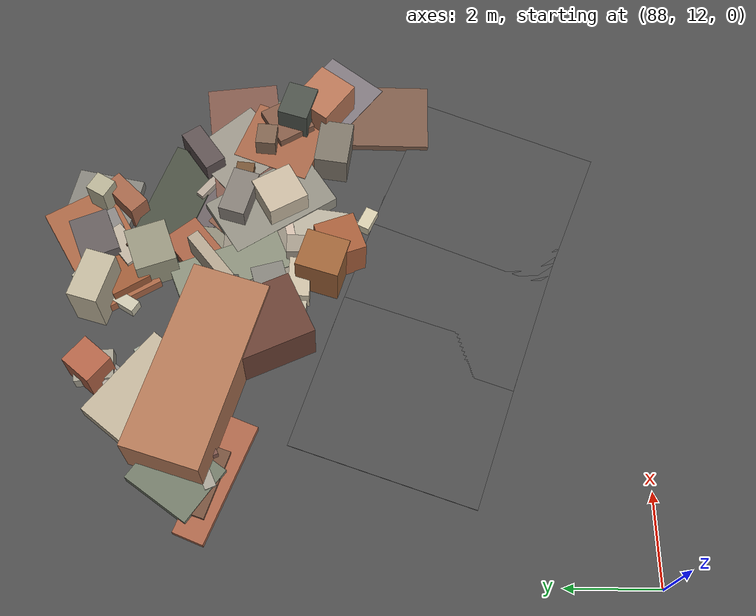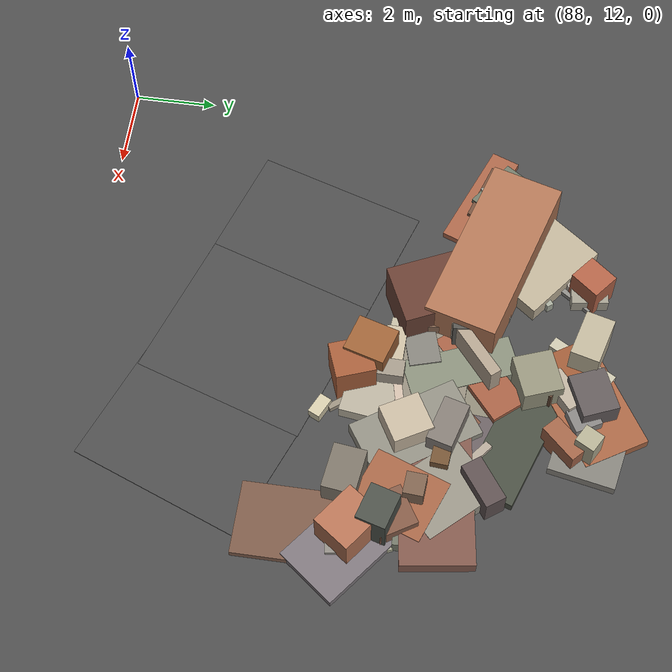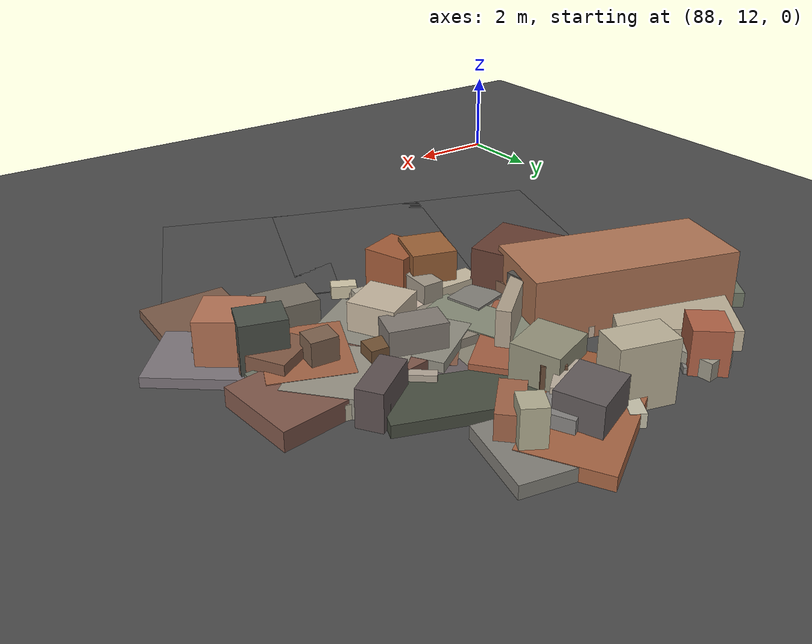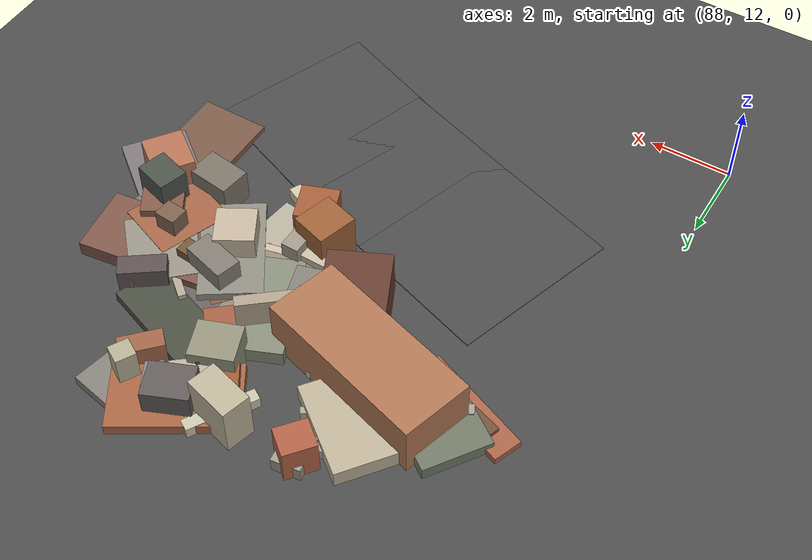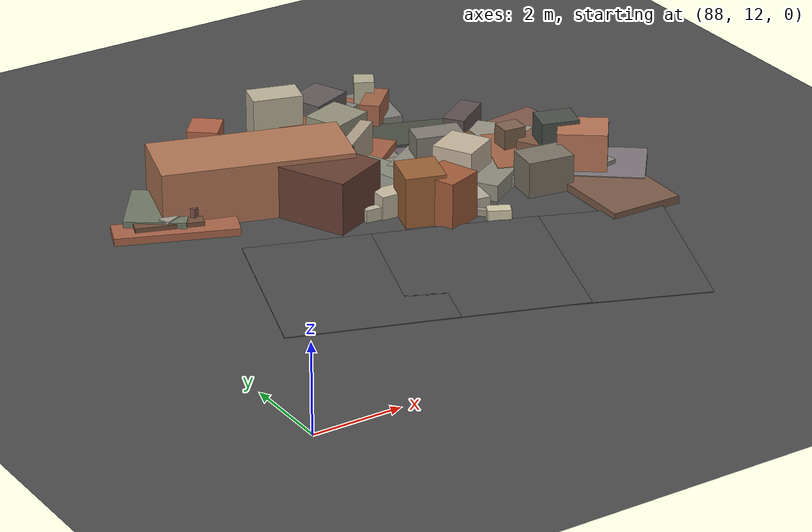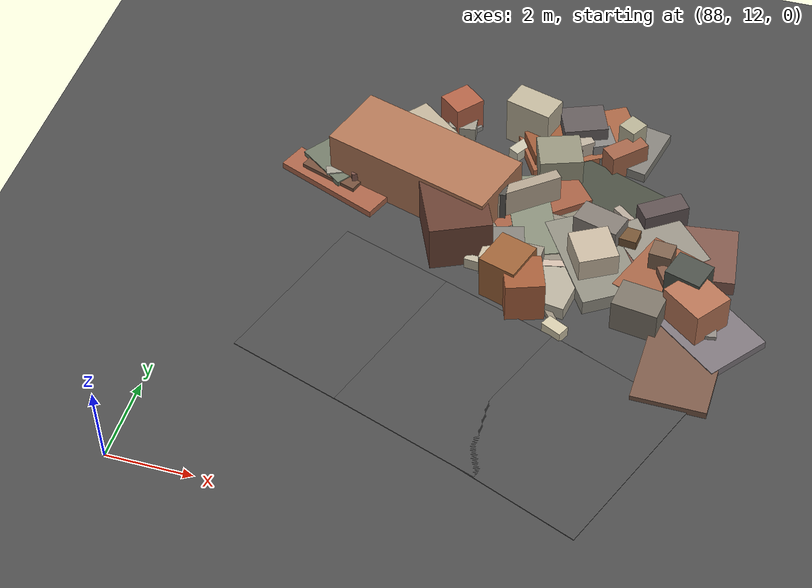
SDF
<sdf version="1.6">
 <world name="navitas_arena">
  <model name="ground_plane">
   <static>true</static>
   <link name="link">
    <collision name="collision">
     <geometry><plane><normal>0 0 1</normal><size>400 400</size></plane></geometry>
     <surface><friction><ode><mu>0.800</mu><mu2>0.800</mu2></ode></friction></surface>
    </collision>
    <visual name="visual">
     <cast_shadows>false</cast_shadows>
     <geometry><plane><normal>0 0 1</normal><size>400 400</size></plane></geometry>
     <material>
      <specular>0.04 0.04 0.04 1</specular>
      <script>
       <uri>file://media/materials/scripts/navitas_asphalt.material</uri>
       <name>Navitas/RealArenaAsphalt</name>
      </script>
     </material>
    </visual>
   </link>
  </model>
  <model name="road_zor_3_21">
   <static>true</static>
   <pose>97.162 15.214 0.040 0 0 2.764</pose>
   <link name="link">
    <collision name="col"><geometry><box><size>3.565 4.200 0.020</size></box></geometry></collision>
    <visual name="vis">
     <geometry><box><size>3.565 4.200 0.020</size></box></geometry>
     <material>
      <specular>0.04 0.04 0.04 1</specular>
      <script>
       <uri>file://media/materials/scripts/navitas_asphalt.material</uri>
       <name>Navitas/RealArenaAsphalt</name>
      </script>
     </material>
    </visual>
   </link>
  </model>
  <model name="road_zor_3_22">
   <static>true</static>
   <pose>94.605 16.160 0.040 0 0 2.809</pose>
   <link name="link">
    <collision name="col"><geometry><box><size>3.688 4.200 0.020</size></box></geometry></collision>
    <visual name="vis">
     <geometry><box><size>3.688 4.200 0.020</size></box></geometry>
     <material>
      <specular>0.04 0.04 0.04 1</specular>
      <script>
       <uri>file://media/materials/scripts/navitas_asphalt.material</uri>
       <name>Navitas/RealArenaAsphalt</name>
      </script>
     </material>
    </visual>
   </link>
  </model>
  <model name="road_zor_3_23">
   <static>true</static>
   <pose>91.965 17.058 0.040 0 0 2.819</pose>
   <link name="link">
    <collision name="col"><geometry><box><size>3.690 4.200 0.020</size></box></geometry></collision>
    <visual name="vis">
     <geometry><box><size>3.690 4.200 0.020</size></box></geometry>
     <material>
      <specular>0.04 0.04 0.04 1</specular>
      <script>
       <uri>file://media/materials/scripts/navitas_asphalt.material</uri>
       <name>Navitas/RealArenaAsphalt</name>
      </script>
     </material>
    </visual>
   </link>
  </model>
  <model name="deb_zor_7">
   <static>true</static>
   <pose>94.740 20.028 0.000 0 0 0</pose>
   <link name="link">
    <collision name="col_0">
     <pose>0.839 0.735 0.091 0.000 0.000 0.851</pose>
     <geometry><box><size>2.139 0.205 0.181</size></box></geometry>
    </collision>
    <visual name="vis_0">
     <pose>0.839 0.735 0.091 0.000 0.000 0.851</pose>
     <geometry><box><size>2.139 0.205 0.181</size></box></geometry>
     <material>
      <ambient>0.49 0.33 0.26 1</ambient>
      <diffuse>0.53 0.36 0.28 1</diffuse>
      <specular>0.05 0.05 0.045 1</specular>
     </material>
    </visual>
    <collision name="col_1">
     <pose>0.266 0.442 0.177 0.000 0.000 -0.054</pose>
     <geometry><box><size>2.109 1.569 0.355</size></box></geometry>
    </collision>
    <visual name="vis_1">
     <pose>0.266 0.442 0.177 0.000 0.000 -0.054</pose>
     <geometry><box><size>2.109 1.569 0.355</size></box></geometry>
     <material>
      <ambient>0.53 0.51 0.46 1</ambient>
      <diffuse>0.58 0.55 0.49 1</diffuse>
      <specular>0.05 0.05 0.045 1</specular>
     </material>
    </visual>
    <collision name="col_2">
     <pose>0.906 -0.437 0.101 0.000 0.000 1.153</pose>
     <geometry><box><size>0.268 0.257 0.201</size></box></geometry>
    </collision>
    <visual name="vis_2">
     <pose>0.906 -0.437 0.101 0.000 0.000 1.153</pose>
     <geometry><box><size>0.268 0.257 0.201</size></box></geometry>
     <material>
      <ambient>0.37 0.40 0.36 1</ambient>
      <diffuse>0.40 0.43 0.39 1</diffuse>
      <specular>0.05 0.05 0.045 1</specular>
     </material>
    </visual>
    <collision name="col_3">
     <pose>0.944 -0.075 0.113 0.000 0.000 0.996</pose>
     <geometry><box><size>0.306 0.165 0.226</size></box></geometry>
    </collision>
    <visual name="vis_3">
     <pose>0.944 -0.075 0.113 0.000 0.000 0.996</pose>
     <geometry><box><size>0.306 0.165 0.226</size></box></geometry>
     <material>
      <ambient>0.37 0.33 0.30 1</ambient>
      <diffuse>0.40 0.36 0.32 1</diffuse>
      <specular>0.05 0.05 0.045 1</specular>
     </material>
    </visual>
    <collision name="col_4">
     <pose>0.280 -0.813 0.128 0.000 0.000 0.427</pose>
     <geometry><box><size>0.356 0.166 0.256</size></box></geometry>
    </collision>
    <visual name="vis_4">
     <pose>0.280 -0.813 0.128 0.000 0.000 0.427</pose>
     <geometry><box><size>0.356 0.166 0.256</size></box></geometry>
     <material>
      <ambient>0.71 0.68 0.61 1</ambient>
      <diffuse>0.77 0.74 0.66 1</diffuse>
      <specular>0.05 0.05 0.045 1</specular>
     </material>
    </visual>
    <collision name="col_5">
     <pose>-0.104 -0.556 0.270 0.000 0.000 -0.026</pose>
     <geometry><box><size>0.950 0.480 0.541</size></box></geometry>
    </collision>
    <visual name="vis_5">
     <pose>-0.104 -0.556 0.270 0.000 0.000 -0.026</pose>
     <geometry><box><size>0.950 0.480 0.541</size></box></geometry>
     <material>
      <ambient>0.73 0.68 0.60 1</ambient>
      <diffuse>0.79 0.74 0.64 1</diffuse>
      <specular>0.05 0.05 0.045 1</specular>
     </material>
    </visual>
   </link>
  </model>
  <model name="deb_zor_18">
   <static>true</static>
   <pose>96.747 20.864 0.000 0 0 0</pose>
   <link name="link">
    <collision name="col_0">
     <pose>-0.134 0.033 0.444 0.000 0.000 2.860</pose>
     <geometry><box><size>1.107 0.608 0.889</size></box></geometry>
    </collision>
    <visual name="vis_0">
     <pose>-0.134 0.033 0.444 0.000 0.000 2.860</pose>
     <geometry><box><size>1.107 0.608 0.889</size></box></geometry>
     <material>
      <ambient>0.48 0.45 0.42 1</ambient>
      <diffuse>0.52 0.49 0.46 1</diffuse>
      <specular>0.05 0.05 0.045 1</specular>
     </material>
    </visual>
    <collision name="col_1">
     <pose>-0.346 -0.089 0.126 0.000 0.000 2.978</pose>
     <geometry><box><size>0.286 0.436 0.252</size></box></geometry>
    </collision>
    <visual name="vis_1">
     <pose>-0.346 -0.089 0.126 0.000 0.000 2.978</pose>
     <geometry><box><size>0.286 0.436 0.252</size></box></geometry>
     <material>
      <ambient>0.33 0.34 0.31 1</ambient>
      <diffuse>0.35 0.36 0.34 1</diffuse>
      <specular>0.05 0.05 0.045 1</specular>
     </material>
    </visual>
    <collision name="col_2">
     <pose>-0.088 0.301 0.090 0.000 0.000 1.481</pose>
     <geometry><box><size>1.737 1.292 0.179</size></box></geometry>
    </collision>
    <visual name="vis_2">
     <pose>-0.088 0.301 0.090 0.000 0.000 1.481</pose>
     <geometry><box><size>1.737 1.292 0.179</size></box></geometry>
     <material>
      <ambient>0.39 0.35 0.36 1</ambient>
      <diffuse>0.42 0.38 0.39 1</diffuse>
      <specular>0.05 0.05 0.045 1</specular>
     </material>
    </visual>
    <collision name="col_3">
     <pose>0.562 -0.042 0.309 0.000 0.000 3.043</pose>
     <geometry><box><size>0.472 0.413 0.617</size></box></geometry>
    </collision>
    <visual name="vis_3">
     <pose>0.562 -0.042 0.309 0.000 0.000 3.043</pose>
     <geometry><box><size>0.472 0.413 0.617</size></box></geometry>
     <material>
      <ambient>0.43 0.30 0.20 1</ambient>
      <diffuse>0.46 0.33 0.21 1</diffuse>
      <specular>0.05 0.05 0.045 1</specular>
     </material>
    </visual>
    <collision name="col_4">
     <pose>-0.729 0.485 0.088 0.000 0.000 3.579</pose>
     <geometry><box><size>2.156 0.884 0.176</size></box></geometry>
    </collision>
    <visual name="vis_4">
     <pose>-0.729 0.485 0.088 0.000 0.000 3.579</pose>
     <geometry><box><size>2.156 0.884 0.176</size></box></geometry>
     <material>
      <ambient>0.52 0.50 0.44 1</ambient>
      <diffuse>0.56 0.54 0.47 1</diffuse>
      <specular>0.05 0.05 0.045 1</specular>
     </material>
    </visual>
   </link>
  </model>
  <model name="deb_zor_20">
   <static>true</static>
   <pose>90.543 21.668 0.000 0 0 0</pose>
   <link name="link">
    <collision name="col_0">
     <pose>0.113 -0.129 0.241 0.000 0.000 3.589</pose>
     <geometry><box><size>0.634 0.809 0.482</size></box></geometry>
    </collision>
    <visual name="vis_0">
     <pose>0.113 -0.129 0.241 0.000 0.000 3.589</pose>
     <geometry><box><size>0.634 0.809 0.482</size></box></geometry>
     <material>
      <ambient>0.46 0.31 0.26 1</ambient>
      <diffuse>0.49 0.33 0.29 1</diffuse>
      <specular>0.05 0.05 0.045 1</specular>
     </material>
    </visual>
    <collision name="col_1">
     <pose>0.090 -0.154 0.170 0.000 0.000 3.567</pose>
     <geometry><box><size>1.698 0.249 0.339</size></box></geometry>
    </collision>
    <visual name="vis_1">
     <pose>0.090 -0.154 0.170 0.000 0.000 3.567</pose>
     <geometry><box><size>1.698 0.249 0.339</size></box></geometry>
     <material>
      <ambient>0.60 0.58 0.53 1</ambient>
      <diffuse>0.65 0.63 0.58 1</diffuse>
      <specular>0.05 0.05 0.045 1</specular>
     </material>
    </visual>
    <collision name="col_2">
     <pose>-0.179 -0.421 0.130 0.000 0.000 3.142</pose>
     <geometry><box><size>0.274 0.354 0.260</size></box></geometry>
    </collision>
    <visual name="vis_2">
     <pose>-0.179 -0.421 0.130 0.000 0.000 3.142</pose>
     <geometry><box><size>0.274 0.354 0.260</size></box></geometry>
     <material>
      <ambient>0.55 0.56 0.52 1</ambient>
      <diffuse>0.60 0.61 0.56 1</diffuse>
      <specular>0.05 0.05 0.045 1</specular>
     </material>
    </visual>
    <collision name="col_3">
     <pose>0.156 0.496 0.110 0.000 0.000 3.876</pose>
     <geometry><box><size>0.382 0.477 0.220</size></box></geometry>
    </collision>
    <visual name="vis_3">
     <pose>0.156 0.496 0.110 0.000 0.000 3.876</pose>
     <geometry><box><size>0.382 0.477 0.220</size></box></geometry>
     <material>
      <ambient>0.49 0.48 0.48 1</ambient>
      <diffuse>0.53 0.51 0.52 1</diffuse>
      <specular>0.05 0.05 0.045 1</specular>
     </material>
    </visual>
    <collision name="col_4">
     <pose>-0.446 -0.160 0.136 0.000 0.000 2.815</pose>
     <geometry><box><size>1.503 1.004 0.272</size></box></geometry>
    </collision>
    <visual name="vis_4">
     <pose>-0.446 -0.160 0.136 0.000 0.000 2.815</pose>
     <geometry><box><size>1.503 1.004 0.272</size></box></geometry>
     <material>
      <ambient>0.43 0.30 0.22 1</ambient>
      <diffuse>0.46 0.32 0.24 1</diffuse>
      <specular>0.05 0.05 0.045 1</specular>
     </material>
    </visual>
    <collision name="col_5">
     <pose>-0.388 0.250 0.153 0.000 0.000 4.097</pose>
     <geometry><box><size>1.614 1.365 0.307</size></box></geometry>
    </collision>
    <visual name="vis_5">
     <pose>-0.388 0.250 0.153 0.000 0.000 4.097</pose>
     <geometry><box><size>1.614 1.365 0.307</size></box></geometry>
     <material>
      <ambient>0.42 0.45 0.38 1</ambient>
      <diffuse>0.45 0.48 0.41 1</diffuse>
      <specular>0.05 0.05 0.045 1</specular>
     </material>
    </visual>
    <collision name="col_6">
     <pose>-0.445 -0.582 0.085 0.000 0.000 2.760</pose>
     <geometry><box><size>2.718 0.700 0.171</size></box></geometry>
    </collision>
    <visual name="vis_6">
     <pose>-0.445 -0.582 0.085 0.000 0.000 2.760</pose>
     <geometry><box><size>2.718 0.700 0.171</size></box></geometry>
     <material>
      <ambient>0.62 0.37 0.27 1</ambient>
      <diffuse>0.67 0.40 0.29 1</diffuse>
      <specular>0.05 0.05 0.045 1</specular>
     </material>
    </visual>
   </link>
  </model>
  <model name="deb_zor_74">
   <static>true</static>
   <pose>96.148 23.140 0.000 0 0 0</pose>
   <link name="link">
    <collision name="col_0">
     <pose>0.489 -0.732 0.120 0.000 0.000 2.793</pose>
     <geometry><box><size>2.837 1.204 0.241</size></box></geometry>
    </collision>
    <visual name="vis_0">
     <pose>0.489 -0.732 0.120 0.000 0.000 2.793</pose>
     <geometry><box><size>2.837 1.204 0.241</size></box></geometry>
     <material>
      <ambient>0.27 0.29 0.24 1</ambient>
      <diffuse>0.29 0.31 0.26 1</diffuse>
      <specular>0.05 0.05 0.045 1</specular>
     </material>
    </visual>
    <collision name="col_1">
     <pose>-0.411 -1.076 0.073 0.000 0.000 2.345</pose>
     <geometry><box><size>1.036 0.269 0.146</size></box></geometry>
    </collision>
    <visual name="vis_1">
     <pose>-0.411 -1.076 0.073 0.000 0.000 2.345</pose>
     <geometry><box><size>1.036 0.269 0.146</size></box></geometry>
     <material>
      <ambient>0.40 0.38 0.36 1</ambient>
      <diffuse>0.43 0.41 0.39 1</diffuse>
      <specular>0.05 0.05 0.045 1</specular>
     </material>
    </visual>
    <collision name="col_2">
     <pose>-0.868 -0.186 0.362 0.000 0.000 1.006</pose>
     <geometry><box><size>0.695 0.442 0.723</size></box></geometry>
    </collision>
    <visual name="vis_2">
     <pose>-0.868 -0.186 0.362 0.000 0.000 1.006</pose>
     <geometry><box><size>0.695 0.442 0.723</size></box></geometry>
     <material>
      <ambient>0.39 0.28 0.20 1</ambient>
      <diffuse>0.42 0.30 0.22 1</diffuse>
      <specular>0.05 0.05 0.045 1</specular>
     </material>
    </visual>
    <collision name="col_3">
     <pose>0.419 0.979 0.126 0.000 0.000 1.366</pose>
     <geometry><box><size>1.556 1.576 0.253</size></box></geometry>
    </collision>
    <visual name="vis_3">
     <pose>0.419 0.979 0.126 0.000 0.000 1.366</pose>
     <geometry><box><size>1.556 1.576 0.253</size></box></geometry>
     <material>
      <ambient>0.48 0.47 0.45 1</ambient>
      <diffuse>0.52 0.51 0.48 1</diffuse>
      <specular>0.05 0.05 0.045 1</specular>
     </material>
    </visual>
    <collision name="col_4">
     <pose>0.468 0.374 0.368 0.000 0.000 0.797</pose>
     <geometry><box><size>0.992 0.465 0.736</size></box></geometry>
    </collision>
    <visual name="vis_4">
     <pose>0.468 0.374 0.368 0.000 0.000 0.797</pose>
     <geometry><box><size>0.992 0.465 0.736</size></box></geometry>
     <material>
      <ambient>0.60 0.37 0.27 1</ambient>
      <diffuse>0.64 0.40 0.29 1</diffuse>
      <specular>0.05 0.05 0.045 1</specular>
     </material>
    </visual>
    <collision name="col_5">
     <pose>0.518 0.893 0.496 0.000 0.000 2.619</pose>
     <geometry><box><size>0.460 0.476 0.991</size></box></geometry>
    </collision>
    <visual name="vis_5">
     <pose>0.518 0.893 0.496 0.000 0.000 2.619</pose>
     <geometry><box><size>0.460 0.476 0.991</size></box></geometry>
     <material>
      <ambient>0.65 0.64 0.54 1</ambient>
      <diffuse>0.71 0.69 0.58 1</diffuse>
      <specular>0.05 0.05 0.045 1</specular>
     </material>
    </visual>
    <collision name="col_6">
     <pose>-0.735 0.858 0.132 0.000 0.000 0.540</pose>
     <geometry><box><size>2.847 1.585 0.265</size></box></geometry>
    </collision>
    <visual name="vis_6">
     <pose>-0.735 0.858 0.132 0.000 0.000 0.540</pose>
     <geometry><box><size>2.847 1.585 0.265</size></box></geometry>
     <material>
      <ambient>0.61 0.37 0.25 1</ambient>
      <diffuse>0.66 0.40 0.27 1</diffuse>
      <specular>0.05 0.05 0.045 1</specular>
     </material>
    </visual>
   </link>
  </model>
  <model name="deb_zor_136">
   <static>true</static>
   <pose>98.743 19.851 0.000 0 0 0</pose>
   <link name="link">
    <collision name="col_0">
     <pose>0.476 -0.840 0.539 0.000 0.000 -0.638</pose>
     <geometry><box><size>1.119 0.975 1.078</size></box></geometry>
    </collision>
    <visual name="vis_0">
     <pose>0.476 -0.840 0.539 0.000 0.000 -0.638</pose>
     <geometry><box><size>1.119 0.975 1.078</size></box></geometry>
     <material>
      <ambient>0.67 0.43 0.31 1</ambient>
      <diffuse>0.72 0.46 0.34 1</diffuse>
      <specular>0.05 0.05 0.045 1</specular>
     </material>
    </visual>
    <collision name="col_1">
     <pose>-0.376 0.489 0.126 0.000 0.000 0.515</pose>
     <geometry><box><size>0.314 0.221 0.252</size></box></geometry>
    </collision>
    <visual name="vis_1">
     <pose>-0.376 0.489 0.126 0.000 0.000 0.515</pose>
     <geometry><box><size>0.314 0.221 0.252</size></box></geometry>
     <material>
      <ambient>0.68 0.65 0.59 1</ambient>
      <diffuse>0.74 0.70 0.64 1</diffuse>
      <specular>0.05 0.05 0.045 1</specular>
     </material>
    </visual>
    <collision name="col_2">
     <pose>0.511 -0.747 0.100 0.000 0.000 -0.665</pose>
     <geometry><box><size>2.882 1.573 0.201</size></box></geometry>
    </collision>
    <visual name="vis_2">
     <pose>0.511 -0.747 0.100 0.000 0.000 -0.665</pose>
     <geometry><box><size>2.882 1.573 0.201</size></box></geometry>
     <material>
      <ambient>0.47 0.44 0.45 1</ambient>
      <diffuse>0.50 0.47 0.49 1</diffuse>
      <specular>0.05 0.05 0.045 1</specular>
     </material>
    </visual>
    <collision name="col_3">
     <pose>0.690 -0.090 0.061 0.000 0.000 0.412</pose>
     <geometry><box><size>0.268 0.443 0.121</size></box></geometry>
    </collision>
    <visual name="vis_3">
     <pose>0.690 -0.090 0.061 0.000 0.000 0.412</pose>
     <geometry><box><size>0.268 0.443 0.121</size></box></geometry>
     <material>
      <ambient>0.62 0.62 0.53 1</ambient>
      <diffuse>0.67 0.67 0.57 1</diffuse>
      <specular>0.05 0.05 0.045 1</specular>
     </material>
    </visual>
    <collision name="col_4">
     <pose>0.038 0.021 0.301 0.000 0.000 0.539</pose>
     <geometry><box><size>0.972 0.910 0.603</size></box></geometry>
    </collision>
    <visual name="vis_4">
     <pose>0.038 0.021 0.301 0.000 0.000 0.539</pose>
     <geometry><box><size>0.972 0.910 0.603</size></box></geometry>
     <material>
      <ambient>0.49 0.33 0.26 1</ambient>
      <diffuse>0.52 0.36 0.28 1</diffuse>
      <specular>0.05 0.05 0.045 1</specular>
     </material>
    </visual>
   </link>
  </model>
  <model name="deb_zor_164">
   <static>true</static>
   <pose>95.210 19.481 0.000 0 0 0</pose>
   <link name="link">
    <collision name="col_0">
     <pose>0.666 -0.286 0.173 0.000 0.000 1.429</pose>
     <geometry><box><size>1.453 1.202 0.345</size></box></geometry>
    </collision>
    <visual name="vis_0">
     <pose>0.666 -0.286 0.173 0.000 0.000 1.429</pose>
     <geometry><box><size>1.453 1.202 0.345</size></box></geometry>
     <material>
      <ambient>0.66 0.64 0.57 1</ambient>
      <diffuse>0.72 0.69 0.62 1</diffuse>
      <specular>0.05 0.05 0.045 1</specular>
     </material>
    </visual>
    <collision name="col_1">
     <pose>-0.286 -0.523 0.584 0.000 0.000 1.271</pose>
     <geometry><box><size>0.986 0.909 1.168</size></box></geometry>
    </collision>
    <visual name="vis_1">
     <pose>-0.286 -0.523 0.584 0.000 0.000 1.271</pose>
     <geometry><box><size>0.986 0.909 1.168</size></box></geometry>
     <material>
      <ambient>0.57 0.36 0.21 1</ambient>
      <diffuse>0.62 0.39 0.22 1</diffuse>
      <specular>0.05 0.05 0.045 1</specular>
     </material>
    </visual>
    <collision name="col_2">
     <pose>0.364 -0.449 0.070 0.000 0.000 -0.923</pose>
     <geometry><box><size>2.222 0.147 0.141</size></box></geometry>
    </collision>
    <visual name="vis_2">
     <pose>0.364 -0.449 0.070 0.000 0.000 -0.923</pose>
     <geometry><box><size>2.222 0.147 0.141</size></box></geometry>
     <material>
      <ambient>0.57 0.53 0.46 1</ambient>
      <diffuse>0.61 0.57 0.50 1</diffuse>
      <specular>0.05 0.05 0.045 1</specular>
     </material>
    </visual>
    <collision name="col_3">
     <pose>0.498 0.086 0.151 0.000 0.000 -0.917</pose>
     <geometry><box><size>1.254 0.273 0.302</size></box></geometry>
    </collision>
    <visual name="vis_3">
     <pose>0.498 0.086 0.151 0.000 0.000 -0.917</pose>
     <geometry><box><size>1.254 0.273 0.302</size></box></geometry>
     <material>
      <ambient>0.60 0.60 0.55 1</ambient>
      <diffuse>0.65 0.65 0.59 1</diffuse>
      <specular>0.05 0.05 0.045 1</specular>
     </material>
    </visual>
    <collision name="col_4">
     <pose>0.829 0.418 0.156 0.000 0.000 0.551</pose>
     <geometry><box><size>0.209 0.236 0.313</size></box></geometry>
    </collision>
    <visual name="vis_4">
     <pose>0.829 0.418 0.156 0.000 0.000 0.551</pose>
     <geometry><box><size>0.209 0.236 0.313</size></box></geometry>
     <material>
      <ambient>0.47 0.47 0.44 1</ambient>
      <diffuse>0.51 0.51 0.48 1</diffuse>
      <specular>0.05 0.05 0.045 1</specular>
     </material>
    </visual>
    <collision name="col_5">
     <pose>0.340 -0.310 0.117 0.000 0.000 0.638</pose>
     <geometry><box><size>0.296 0.429 0.235</size></box></geometry>
    </collision>
    <visual name="vis_5">
     <pose>0.340 -0.310 0.117 0.000 0.000 0.638</pose>
     <geometry><box><size>0.296 0.429 0.235</size></box></geometry>
     <material>
      <ambient>0.48 0.49 0.45 1</ambient>
      <diffuse>0.52 0.52 0.49 1</diffuse>
      <specular>0.05 0.05 0.045 1</specular>
     </material>
    </visual>
    <collision name="col_6">
     <pose>0.172 -0.898 0.544 0.000 0.000 -1.221</pose>
     <geometry><box><size>0.933 0.897 1.088</size></box></geometry>
    </collision>
    <visual name="vis_6">
     <pose>0.172 -0.898 0.544 0.000 0.000 -1.221</pose>
     <geometry><box><size>0.933 0.897 1.088</size></box></geometry>
     <material>
      <ambient>0.60 0.34 0.21 1</ambient>
      <diffuse>0.65 0.37 0.23 1</diffuse>
      <specular>0.05 0.05 0.045 1</specular>
     </material>
    </visual>
   </link>
  </model>
  <model name="deb_zor_201">
   <static>true</static>
   <pose>97.431 20.041 0.000 0 0 0</pose>
   <link name="link">
    <collision name="col_0">
     <pose>-0.774 -0.328 0.104 0.000 0.000 0.726</pose>
     <geometry><box><size>0.404 0.323 0.208</size></box></geometry>
    </collision>
    <visual name="vis_0">
     <pose>-0.774 -0.328 0.104 0.000 0.000 0.726</pose>
     <geometry><box><size>0.404 0.323 0.208</size></box></geometry>
     <material>
      <ambient>0.59 0.31 0.20 1</ambient>
      <diffuse>0.64 0.34 0.22 1</diffuse>
      <specular>0.05 0.05 0.045 1</specular>
     </material>
    </visual>
    <collision name="col_1">
     <pose>-0.772 -0.075 0.479 0.000 0.000 -1.060</pose>
     <geometry><box><size>0.956 0.938 0.959</size></box></geometry>
    </collision>
    <visual name="vis_1">
     <pose>-0.772 -0.075 0.479 0.000 0.000 -1.060</pose>
     <geometry><box><size>0.956 0.938 0.959</size></box></geometry>
     <material>
      <ambient>0.72 0.66 0.58 1</ambient>
      <diffuse>0.78 0.72 0.63 1</diffuse>
      <specular>0.05 0.05 0.045 1</specular>
     </material>
    </visual>
    <collision name="col_2">
     <pose>-0.787 0.146 0.190 0.000 0.000 -0.996</pose>
     <geometry><box><size>2.639 1.479 0.380</size></box></geometry>
    </collision>
    <visual name="vis_2">
     <pose>-0.787 0.146 0.190 0.000 0.000 -0.996</pose>
     <geometry><box><size>2.639 1.479 0.380</size></box></geometry>
     <material>
      <ambient>0.53 0.52 0.47 1</ambient>
      <diffuse>0.57 0.56 0.51 1</diffuse>
      <specular>0.05 0.05 0.045 1</specular>
     </material>
    </visual>
    <collision name="col_3">
     <pose>0.301 1.066 0.184 0.000 0.000 -0.682</pose>
     <geometry><box><size>2.397 0.183 0.369</size></box></geometry>
    </collision>
    <visual name="vis_3">
     <pose>0.301 1.066 0.184 0.000 0.000 -0.682</pose>
     <geometry><box><size>2.397 0.183 0.369</size></box></geometry>
     <material>
      <ambient>0.66 0.62 0.56 1</ambient>
      <diffuse>0.71 0.66 0.60 1</diffuse>
      <specular>0.05 0.05 0.045 1</specular>
     </material>
    </visual>
   </link>
  </model>
  <model name="deb_zor_211">
   <static>true</static>
   <pose>98.161 21.333 0.000 0 0 0</pose>
   <link name="link">
    <collision name="col_0">
     <pose>-0.273 0.479 0.366 0.000 0.000 3.757</pose>
     <geometry><box><size>1.101 0.500 0.732</size></box></geometry>
    </collision>
    <visual name="vis_0">
     <pose>-0.273 0.479 0.366 0.000 0.000 3.757</pose>
     <geometry><box><size>1.101 0.500 0.732</size></box></geometry>
     <material>
      <ambient>0.34 0.29 0.30 1</ambient>
      <diffuse>0.37 0.32 0.32 1</diffuse>
      <specular>0.05 0.05 0.045 1</specular>
     </material>
    </visual>
    <collision name="col_1">
     <pose>-0.148 -0.384 0.193 0.000 0.000 2.307</pose>
     <geometry><box><size>1.883 1.601 0.386</size></box></geometry>
    </collision>
    <visual name="vis_1">
     <pose>-0.148 -0.384 0.193 0.000 0.000 2.307</pose>
     <geometry><box><size>1.883 1.601 0.386</size></box></geometry>
     <material>
      <ambient>0.56 0.54 0.49 1</ambient>
      <diffuse>0.60 0.58 0.53 1</diffuse>
      <specular>0.05 0.05 0.045 1</specular>
     </material>
    </visual>
    <collision name="col_2">
     <pose>0.339 0.229 0.148 0.000 0.000 2.965</pose>
     <geometry><box><size>0.432 0.258 0.295</size></box></geometry>
    </collision>
    <visual name="vis_2">
     <pose>0.339 0.229 0.148 0.000 0.000 2.965</pose>
     <geometry><box><size>0.432 0.258 0.295</size></box></geometry>
     <material>
      <ambient>0.69 0.66 0.58 1</ambient>
      <diffuse>0.74 0.71 0.62 1</diffuse>
      <specular>0.05 0.05 0.045 1</specular>
     </material>
    </visual>
    <collision name="col_3">
     <pose>-0.408 -0.198 0.144 0.000 0.000 4.120</pose>
     <geometry><box><size>2.109 0.180 0.288</size></box></geometry>
    </collision>
    <visual name="vis_3">
     <pose>-0.408 -0.198 0.144 0.000 0.000 4.120</pose>
     <geometry><box><size>2.109 0.180 0.288</size></box></geometry>
     <material>
      <ambient>0.61 0.37 0.27 1</ambient>
      <diffuse>0.65 0.40 0.29 1</diffuse>
      <specular>0.05 0.05 0.045 1</specular>
     </material>
    </visual>
    <collision name="col_4">
     <pose>0.117 -0.109 0.085 0.000 0.000 1.853</pose>
     <geometry><box><size>0.255 0.199 0.170</size></box></geometry>
    </collision>
    <visual name="vis_4">
     <pose>0.117 -0.109 0.085 0.000 0.000 1.853</pose>
     <geometry><box><size>0.255 0.199 0.170</size></box></geometry>
     <material>
      <ambient>0.55 0.54 0.52 1</ambient>
      <diffuse>0.60 0.58 0.56 1</diffuse>
      <specular>0.05 0.05 0.045 1</specular>
     </material>
    </visual>
    <collision name="col_5">
     <pose>0.096 -0.517 0.188 0.000 0.000 3.272</pose>
     <geometry><box><size>3.116 1.669 0.376</size></box></geometry>
    </collision>
    <visual name="vis_5">
     <pose>0.096 -0.517 0.188 0.000 0.000 3.272</pose>
     <geometry><box><size>3.116 1.669 0.376</size></box></geometry>
     <material>
      <ambient>0.47 0.32 0.28 1</ambient>
      <diffuse>0.51 0.35 0.30 1</diffuse>
      <specular>0.05 0.05 0.045 1</specular>
     </material>
    </visual>
    <collision name="col_6">
     <pose>-0.321 -0.041 0.067 0.000 0.000 2.326</pose>
     <geometry><box><size>2.007 0.182 0.135</size></box></geometry>
    </collision>
    <visual name="vis_6">
     <pose>-0.321 -0.041 0.067 0.000 0.000 2.326</pose>
     <geometry><box><size>2.007 0.182 0.135</size></box></geometry>
     <material>
      <ambient>0.64 0.42 0.30 1</ambient>
      <diffuse>0.69 0.46 0.33 1</diffuse>
      <specular>0.05 0.05 0.045 1</specular>
     </material>
    </visual>
   </link>
  </model>
  <model name="deb_zor_297">
   <static>true</static>
   <pose>96.276 19.123 0.000 0 0 0</pose>
   <link name="link">
    <collision name="col_0">
     <pose>-0.280 0.080 0.128 0.000 0.000 1.852</pose>
     <geometry><box><size>0.325 0.227 0.255</size></box></geometry>
    </collision>
    <visual name="vis_0">
     <pose>-0.280 0.080 0.128 0.000 0.000 1.852</pose>
     <geometry><box><size>0.325 0.227 0.255</size></box></geometry>
     <material>
      <ambient>0.37 0.28 0.18 1</ambient>
      <diffuse>0.40 0.30 0.19 1</diffuse>
      <specular>0.05 0.05 0.045 1</specular>
     </material>
    </visual>
    <collision name="col_1">
     <pose>0.377 0.831 0.170 0.000 0.000 1.177</pose>
     <geometry><box><size>0.428 0.288 0.340</size></box></geometry>
    </collision>
    <visual name="vis_1">
     <pose>0.377 0.831 0.170 0.000 0.000 1.177</pose>
     <geometry><box><size>0.428 0.288 0.340</size></box></geometry>
     <material>
      <ambient>0.61 0.36 0.25 1</ambient>
      <diffuse>0.66 0.39 0.27 1</diffuse>
      <specular>0.05 0.05 0.045 1</specular>
     </material>
    </visual>
    <collision name="col_2">
     <pose>0.012 -1.170 0.135 0.000 0.000 2.686</pose>
     <geometry><box><size>0.519 0.296 0.271</size></box></geometry>
    </collision>
    <visual name="vis_2">
     <pose>0.012 -1.170 0.135 0.000 0.000 2.686</pose>
     <geometry><box><size>0.519 0.296 0.271</size></box></geometry>
     <material>
      <ambient>0.77 0.73 0.62 1</ambient>
      <diffuse>0.83 0.79 0.67 1</diffuse>
      <specular>0.05 0.05 0.045 1</specular>
     </material>
    </visual>
    <collision name="col_3">
     <pose>0.484 0.018 0.131 0.000 0.000 2.749</pose>
     <geometry><box><size>0.407 0.317 0.263</size></box></geometry>
    </collision>
    <visual name="vis_3">
     <pose>0.484 0.018 0.131 0.000 0.000 2.749</pose>
     <geometry><box><size>0.407 0.317 0.263</size></box></geometry>
     <material>
      <ambient>0.60 0.38 0.27 1</ambient>
      <diffuse>0.65 0.41 0.29 1</diffuse>
      <specular>0.05 0.05 0.045 1</specular>
     </material>
    </visual>
    <collision name="col_4">
     <pose>1.104 0.110 0.124 0.000 0.000 2.537</pose>
     <geometry><box><size>0.277 0.167 0.249</size></box></geometry>
    </collision>
    <visual name="vis_4">
     <pose>1.104 0.110 0.124 0.000 0.000 2.537</pose>
     <geometry><box><size>0.277 0.167 0.249</size></box></geometry>
     <material>
      <ambient>0.52 0.50 0.47 1</ambient>
      <diffuse>0.56 0.54 0.51 1</diffuse>
      <specular>0.05 0.05 0.045 1</specular>
     </material>
    </visual>
   </link>
  </model>
  <model name="deb_zor_301">
   <static>true</static>
   <pose>94.909 20.366 0.000 0 0 0</pose>
   <link name="link">
    <collision name="col_0">
     <pose>0.291 -0.679 0.146 0.000 0.000 3.247</pose>
     <geometry><box><size>0.308 0.167 0.292</size></box></geometry>
    </collision>
    <visual name="vis_0">
     <pose>0.291 -0.679 0.146 0.000 0.000 3.247</pose>
     <geometry><box><size>0.308 0.167 0.292</size></box></geometry>
     <material>
      <ambient>0.66 0.41 0.31 1</ambient>
      <diffuse>0.71 0.44 0.34 1</diffuse>
      <specular>0.05 0.05 0.045 1</specular>
     </material>
    </visual>
    <collision name="col_1">
     <pose>-0.791 -0.384 0.209 0.000 0.000 3.418</pose>
     <geometry><box><size>1.814 0.740 0.417</size></box></geometry>
    </collision>
    <visual name="vis_1">
     <pose>-0.791 -0.384 0.209 0.000 0.000 3.418</pose>
     <geometry><box><size>1.814 0.740 0.417</size></box></geometry>
     <material>
      <ambient>0.48 0.47 0.45 1</ambient>
      <diffuse>0.52 0.51 0.48 1</diffuse>
      <specular>0.05 0.05 0.045 1</specular>
     </material>
    </visual>
    <collision name="col_2">
     <pose>0.627 -0.721 0.178 0.000 0.000 3.357</pose>
     <geometry><box><size>2.006 0.194 0.356</size></box></geometry>
    </collision>
    <visual name="vis_2">
     <pose>0.627 -0.721 0.178 0.000 0.000 3.357</pose>
     <geometry><box><size>2.006 0.194 0.356</size></box></geometry>
     <material>
      <ambient>0.76 0.68 0.62 1</ambient>
      <diffuse>0.82 0.74 0.67 1</diffuse>
      <specular>0.05 0.05 0.045 1</specular>
     </material>
    </visual>
    <collision name="col_3">
     <pose>0.043 0.680 0.189 0.000 0.000 1.956</pose>
     <geometry><box><size>2.587 0.982 0.378</size></box></geometry>
    </collision>
    <visual name="vis_3">
     <pose>0.043 0.680 0.189 0.000 0.000 1.956</pose>
     <geometry><box><size>2.587 0.982 0.378</size></box></geometry>
     <material>
      <ambient>0.50 0.52 0.45 1</ambient>
      <diffuse>0.54 0.56 0.48 1</diffuse>
      <specular>0.05 0.05 0.045 1</specular>
     </material>
    </visual>
    <collision name="col_4">
     <pose>0.440 -1.079 0.375 0.000 0.000 1.550</pose>
     <geometry><box><size>0.974 0.429 0.750</size></box></geometry>
    </collision>
    <visual name="vis_4">
     <pose>0.440 -1.079 0.375 0.000 0.000 1.550</pose>
     <geometry><box><size>0.974 0.429 0.750</size></box></geometry>
     <material>
      <ambient>0.60 0.55 0.50 1</ambient>
      <diffuse>0.64 0.60 0.54 1</diffuse>
      <specular>0.05 0.05 0.045 1</specular>
     </material>
    </visual>
    <collision name="col_5">
     <pose>0.077 1.123 0.180 0.000 0.000 3.830</pose>
     <geometry><box><size>2.419 0.880 0.361</size></box></geometry>
    </collision>
    <visual name="vis_5">
     <pose>0.077 1.123 0.180 0.000 0.000 3.830</pose>
     <geometry><box><size>2.419 0.880 0.361</size></box></geometry>
     <material>
      <ambient>0.61 0.35 0.25 1</ambient>
      <diffuse>0.65 0.38 0.27 1</diffuse>
      <specular>0.05 0.05 0.045 1</specular>
     </material>
    </visual>
    <collision name="col_6">
     <pose>-0.589 -0.991 0.145 0.000 0.000 3.056</pose>
     <geometry><box><size>1.033 0.181 0.290</size></box></geometry>
    </collision>
    <visual name="vis_6">
     <pose>-0.589 -0.991 0.145 0.000 0.000 3.056</pose>
     <geometry><box><size>1.033 0.181 0.290</size></box></geometry>
     <material>
      <ambient>0.70 0.67 0.60 1</ambient>
      <diffuse>0.76 0.73 0.64 1</diffuse>
      <specular>0.05 0.05 0.045 1</specular>
     </material>
    </visual>
   </link>
  </model>
  <model name="deb_zor_329">
   <static>true</static>
   <pose>92.295 22.718 0.000 0 0 0</pose>
   <link name="link">
    <collision name="col_0">
     <pose>-0.082 0.760 0.132 0.000 0.000 1.960</pose>
     <geometry><box><size>0.373 0.414 0.265</size></box></geometry>
    </collision>
    <visual name="vis_0">
     <pose>-0.082 0.760 0.132 0.000 0.000 1.960</pose>
     <geometry><box><size>0.373 0.414 0.265</size></box></geometry>
     <material>
      <ambient>0.64 0.60 0.57 1</ambient>
      <diffuse>0.69 0.65 0.61 1</diffuse>
      <specular>0.05 0.05 0.045 1</specular>
     </material>
    </visual>
    <collision name="col_1">
     <pose>-0.345 0.026 0.209 0.000 0.000 2.476</pose>
     <geometry><box><size>2.280 1.438 0.418</size></box></geometry>
    </collision>
    <visual name="vis_1">
     <pose>-0.345 0.026 0.209 0.000 0.000 2.476</pose>
     <geometry><box><size>2.280 1.438 0.418</size></box></geometry>
     <material>
      <ambient>0.69 0.65 0.56 1</ambient>
      <diffuse>0.75 0.70 0.60 1</diffuse>
      <specular>0.05 0.05 0.045 1</specular>
     </material>
    </visual>
    <collision name="col_2">
     <pose>-0.194 -0.688 0.106 0.000 0.000 1.030</pose>
     <geometry><box><size>0.450 0.309 0.213</size></box></geometry>
    </collision>
    <visual name="vis_2">
     <pose>-0.194 -0.688 0.106 0.000 0.000 1.030</pose>
     <geometry><box><size>0.450 0.309 0.213</size></box></geometry>
     <material>
      <ambient>0.60 0.35 0.23 1</ambient>
      <diffuse>0.65 0.38 0.24 1</diffuse>
      <specular>0.05 0.05 0.045 1</specular>
     </material>
    </visual>
    <collision name="col_3">
     <pose>0.879 -0.740 0.115 0.000 0.000 2.934</pose>
     <geometry><box><size>0.492 0.277 0.229</size></box></geometry>
    </collision>
    <visual name="vis_3">
     <pose>0.879 -0.740 0.115 0.000 0.000 2.934</pose>
     <geometry><box><size>0.492 0.277 0.229</size></box></geometry>
     <material>
      <ambient>0.77 0.69 0.61 1</ambient>
      <diffuse>0.83 0.75 0.66 1</diffuse>
      <specular>0.05 0.05 0.045 1</specular>
     </material>
    </visual>
   </link>
  </model>
  <model name="deb_zor_364">
   <static>true</static>
   <pose>95.425 23.465 0.000 0 0 0</pose>
   <link name="link">
    <collision name="col_0">
     <pose>-0.259 -0.153 0.122 0.000 0.000 2.455</pose>
     <geometry><box><size>0.331 0.317 0.244</size></box></geometry>
    </collision>
    <visual name="vis_0">
     <pose>-0.259 -0.153 0.122 0.000 0.000 2.455</pose>
     <geometry><box><size>0.331 0.317 0.244</size></box></geometry>
     <material>
      <ambient>0.40 0.30 0.22 1</ambient>
      <diffuse>0.44 0.32 0.24 1</diffuse>
      <specular>0.05 0.05 0.045 1</specular>
     </material>
    </visual>
    <collision name="col_1">
     <pose>-0.250 -0.678 0.467 0.000 0.000 3.492</pose>
     <geometry><box><size>1.031 0.934 0.934</size></box></geometry>
    </collision>
    <visual name="vis_1">
     <pose>-0.250 -0.678 0.467 0.000 0.000 3.492</pose>
     <geometry><box><size>1.031 0.934 0.934</size></box></geometry>
     <material>
      <ambient>0.55 0.53 0.46 1</ambient>
      <diffuse>0.59 0.58 0.49 1</diffuse>
      <specular>0.05 0.05 0.045 1</specular>
     </material>
    </visual>
    <collision name="col_2">
     <pose>-0.084 -0.032 0.320 0.000 0.000 2.257</pose>
     <geometry><box><size>0.452 0.973 0.640</size></box></geometry>
    </collision>
    <visual name="vis_2">
     <pose>-0.084 -0.032 0.320 0.000 0.000 2.257</pose>
     <geometry><box><size>0.452 0.973 0.640</size></box></geometry>
     <material>
      <ambient>0.68 0.64 0.57 1</ambient>
      <diffuse>0.74 0.69 0.62 1</diffuse>
      <specular>0.05 0.05 0.045 1</specular>
     </material>
    </visual>
    <collision name="col_3">
     <pose>0.515 0.458 0.263 0.000 0.000 2.058</pose>
     <geometry><box><size>0.658 0.565 0.526</size></box></geometry>
    </collision>
    <visual name="vis_3">
     <pose>0.515 0.458 0.263 0.000 0.000 2.058</pose>
     <geometry><box><size>0.658 0.565 0.526</size></box></geometry>
     <material>
      <ambient>0.49 0.48 0.47 1</ambient>
      <diffuse>0.53 0.52 0.51 1</diffuse>
      <specular>0.05 0.05 0.045 1</specular>
     </material>
    </visual>
   </link>
  </model>
  <model name="deb_zor_389">
   <static>true</static>
   <pose>98.521 18.672 0.000 0 0 0</pose>
   <link name="link">
    <collision name="col_0">
     <pose>1.052 0.103 0.150 0.000 0.000 1.737</pose>
     <geometry><box><size>0.479 0.400 0.300</size></box></geometry>
    </collision>
    <visual name="vis_0">
     <pose>1.052 0.103 0.150 0.000 0.000 1.737</pose>
     <geometry><box><size>0.479 0.400 0.300</size></box></geometry>
     <material>
      <ambient>0.52 0.51 0.48 1</ambient>
      <diffuse>0.57 0.55 0.52 1</diffuse>
      <specular>0.05 0.05 0.045 1</specular>
     </material>
    </visual>
    <collision name="col_1">
     <pose>-0.514 0.083 0.415 0.000 0.000 3.000</pose>
     <geometry><box><size>1.082 0.772 0.831</size></box></geometry>
    </collision>
    <visual name="vis_1">
     <pose>-0.514 0.083 0.415 0.000 0.000 3.000</pose>
     <geometry><box><size>1.082 0.772 0.831</size></box></geometry>
     <material>
      <ambient>0.46 0.42 0.38 1</ambient>
      <diffuse>0.49 0.46 0.41 1</diffuse>
      <specular>0.05 0.05 0.045 1</specular>
     </material>
    </visual>
    <collision name="col_2">
     <pose>0.118 1.047 0.104 0.000 0.000 1.328</pose>
     <geometry><box><size>1.622 1.087 0.208</size></box></geometry>
    </collision>
    <visual name="vis_2">
     <pose>0.118 1.047 0.104 0.000 0.000 1.328</pose>
     <geometry><box><size>1.622 1.087 0.208</size></box></geometry>
     <material>
      <ambient>0.67 0.67 0.58 1</ambient>
      <diffuse>0.72 0.72 0.63 1</diffuse>
      <specular>0.05 0.05 0.045 1</specular>
     </material>
    </visual>
    <collision name="col_3">
     <pose>0.655 -1.012 0.090 0.000 0.000 1.559</pose>
     <geometry><box><size>2.316 1.702 0.181</size></box></geometry>
    </collision>
    <visual name="vis_3">
     <pose>0.655 -1.012 0.090 0.000 0.000 1.559</pose>
     <geometry><box><size>2.316 1.702 0.181</size></box></geometry>
     <material>
      <ambient>0.46 0.33 0.26 1</ambient>
      <diffuse>0.49 0.36 0.29 1</diffuse>
      <specular>0.05 0.05 0.045 1</specular>
     </material>
    </visual>
   </link>
  </model>
  <model name="deb_zor_390">
   <static>true</static>
   <pose>98.435 19.969 0.000 0 0 0</pose>
   <link name="link">
    <collision name="col_0">
     <pose>-0.158 0.517 0.178 0.000 0.000 3.189</pose>
     <geometry><box><size>2.298 1.115 0.357</size></box></geometry>
    </collision>
    <visual name="vis_0">
     <pose>-0.158 0.517 0.178 0.000 0.000 3.189</pose>
     <geometry><box><size>2.298 1.115 0.357</size></box></geometry>
     <material>
      <ambient>0.42 0.43 0.38 1</ambient>
      <diffuse>0.45 0.47 0.41 1</diffuse>
      <specular>0.05 0.05 0.045 1</specular>
     </material>
    </visual>
    <collision name="col_1">
     <pose>0.486 -0.355 0.581 0.000 0.000 2.845</pose>
     <geometry><box><size>0.868 0.710 1.163</size></box></geometry>
    </collision>
    <visual name="vis_1">
     <pose>0.486 -0.355 0.581 0.000 0.000 2.845</pose>
     <geometry><box><size>0.868 0.710 1.163</size></box></geometry>
     <material>
      <ambient>0.28 0.30 0.27 1</ambient>
      <diffuse>0.30 0.32 0.29 1</diffuse>
      <specular>0.05 0.05 0.045 1</specular>
     </material>
    </visual>
    <collision name="col_2">
     <pose>-0.143 0.024 0.197 0.000 0.000 1.204</pose>
     <geometry><box><size>1.804 1.539 0.393</size></box></geometry>
    </collision>
    <visual name="vis_2">
     <pose>-0.143 0.024 0.197 0.000 0.000 1.204</pose>
     <geometry><box><size>1.804 1.539 0.393</size></box></geometry>
     <material>
      <ambient>0.60 0.37 0.26 1</ambient>
      <diffuse>0.65 0.40 0.28 1</diffuse>
      <specular>0.05 0.05 0.045 1</specular>
     </material>
    </visual>
    <collision name="col_3">
     <pose>0.322 -0.593 0.084 0.000 0.000 1.286</pose>
     <geometry><box><size>2.121 0.301 0.167</size></box></geometry>
    </collision>
    <visual name="vis_3">
     <pose>0.322 -0.593 0.084 0.000 0.000 1.286</pose>
     <geometry><box><size>2.121 0.301 0.167</size></box></geometry>
     <material>
      <ambient>0.61 0.36 0.25 1</ambient>
      <diffuse>0.66 0.39 0.28 1</diffuse>
      <specular>0.05 0.05 0.045 1</specular>
     </material>
    </visual>
    <collision name="col_4">
     <pose>-0.250 0.366 0.430 0.000 0.000 1.487</pose>
     <geometry><box><size>0.466 0.526 0.860</size></box></geometry>
    </collision>
    <visual name="vis_4">
     <pose>-0.250 0.366 0.430 0.000 0.000 1.487</pose>
     <geometry><box><size>0.466 0.526 0.860</size></box></geometry>
     <material>
      <ambient>0.47 0.37 0.29 1</ambient>
      <diffuse>0.50 0.39 0.31 1</diffuse>
      <specular>0.05 0.05 0.045 1</specular>
     </material>
    </visual>
    <collision name="col_5">
     <pose>-0.004 0.106 0.130 0.000 0.000 2.935</pose>
     <geometry><box><size>0.449 0.466 0.260</size></box></geometry>
    </collision>
    <visual name="vis_5">
     <pose>-0.004 0.106 0.130 0.000 0.000 2.935</pose>
     <geometry><box><size>0.449 0.466 0.260</size></box></geometry>
     <material>
      <ambient>0.57 0.56 0.49 1</ambient>
      <diffuse>0.62 0.61 0.53 1</diffuse>
      <specular>0.05 0.05 0.045 1</specular>
     </material>
    </visual>
   </link>
  </model>
  <model name="deb_zor_395">
   <static>true</static>
   <pose>94.764 23.877 0.000 0 0 0</pose>
   <link name="link">
    <collision name="col_0">
     <pose>-0.512 0.058 0.622 0.000 0.000 -0.278</pose>
     <geometry><box><size>1.146 0.685 1.245</size></box></geometry>
    </collision>
    <visual name="vis_0">
     <pose>-0.512 0.058 0.622 0.000 0.000 -0.278</pose>
     <geometry><box><size>1.146 0.685 1.245</size></box></geometry>
     <material>
      <ambient>0.69 0.66 0.57 1</ambient>
      <diffuse>0.75 0.71 0.61 1</diffuse>
      <specular>0.05 0.05 0.045 1</specular>
     </material>
    </visual>
    <collision name="col_1">
     <pose>-0.374 -0.058 0.137 0.000 0.000 1.026</pose>
     <geometry><box><size>1.674 0.288 0.274</size></box></geometry>
    </collision>
    <visual name="vis_1">
     <pose>-0.374 -0.058 0.137 0.000 0.000 1.026</pose>
     <geometry><box><size>1.674 0.288 0.274</size></box></geometry>
     <material>
      <ambient>0.73 0.71 0.63 1</ambient>
      <diffuse>0.79 0.77 0.68 1</diffuse>
      <specular>0.05 0.05 0.045 1</specular>
     </material>
    </visual>
    <collision name="col_2">
     <pose>0.049 -0.415 0.271 0.000 0.000 0.555</pose>
     <geometry><box><size>1.081 0.904 0.541</size></box></geometry>
    </collision>
    <visual name="vis_2">
     <pose>0.049 -0.415 0.271 0.000 0.000 0.555</pose>
     <geometry><box><size>1.081 0.904 0.541</size></box></geometry>
     <material>
      <ambient>0.57 0.33 0.21 1</ambient>
      <diffuse>0.62 0.36 0.22 1</diffuse>
      <specular>0.05 0.05 0.045 1</specular>
     </material>
    </visual>
    <collision name="col_3">
     <pose>0.686 0.196 0.429 0.000 0.000 0.391</pose>
     <geometry><box><size>1.057 0.868 0.857</size></box></geometry>
    </collision>
    <visual name="vis_3">
     <pose>0.686 0.196 0.429 0.000 0.000 0.391</pose>
     <geometry><box><size>1.057 0.868 0.857</size></box></geometry>
     <material>
      <ambient>0.36 0.33 0.33 1</ambient>
      <diffuse>0.39 0.36 0.36 1</diffuse>
      <specular>0.05 0.05 0.045 1</specular>
     </material>
    </visual>
    <collision name="col_4">
     <pose>-0.481 0.058 0.103 0.000 0.000 0.649</pose>
     <geometry><box><size>0.207 0.408 0.205</size></box></geometry>
    </collision>
    <visual name="vis_4">
     <pose>-0.481 0.058 0.103 0.000 0.000 0.649</pose>
     <geometry><box><size>0.207 0.408 0.205</size></box></geometry>
     <material>
      <ambient>0.33 0.31 0.29 1</ambient>
      <diffuse>0.35 0.33 0.32 1</diffuse>
      <specular>0.05 0.05 0.045 1</specular>
     </material>
    </visual>
   </link>
  </model>
  <model name="deb_zor_397">
   <static>true</static>
   <pose>92.674 23.330 0.000 0 0 0</pose>
   <link name="link">
    <collision name="col_0">
     <pose>0.163 -0.443 0.125 0.000 0.000 0.611</pose>
     <geometry><box><size>0.347 0.166 0.250</size></box></geometry>
    </collision>
    <visual name="vis_0">
     <pose>0.163 -0.443 0.125 0.000 0.000 0.611</pose>
     <geometry><box><size>0.347 0.166 0.250</size></box></geometry>
     <material>
      <ambient>0.60 0.62 0.56 1</ambient>
      <diffuse>0.65 0.67 0.61 1</diffuse>
      <specular>0.05 0.05 0.045 1</specular>
     </material>
    </visual>
    <collision name="col_1">
     <pose>-0.156 0.537 0.176 0.000 0.000 1.692</pose>
     <geometry><box><size>0.865 0.671 0.353</size></box></geometry>
    </collision>
    <visual name="vis_1">
     <pose>-0.156 0.537 0.176 0.000 0.000 1.692</pose>
     <geometry><box><size>0.865 0.671 0.353</size></box></geometry>
     <material>
      <ambient>0.60 0.58 0.52 1</ambient>
      <diffuse>0.64 0.62 0.56 1</diffuse>
      <specular>0.05 0.05 0.045 1</specular>
     </material>
    </visual>
    <collision name="col_2">
     <pose>-0.225 0.579 0.449 0.000 0.000 -0.691</pose>
     <geometry><box><size>0.698 0.769 0.897</size></box></geometry>
    </collision>
    <visual name="vis_2">
     <pose>-0.225 0.579 0.449 0.000 0.000 -0.691</pose>
     <geometry><box><size>0.698 0.769 0.897</size></box></geometry>
     <material>
      <ambient>0.64 0.36 0.26 1</ambient>
      <diffuse>0.70 0.39 0.28 1</diffuse>
      <specular>0.05 0.05 0.045 1</specular>
     </material>
    </visual>
    <collision name="col_3">
     <pose>-0.259 -0.103 0.063 0.000 0.000 0.948</pose>
     <geometry><box><size>1.742 0.126 0.127</size></box></geometry>
    </collision>
    <visual name="vis_3">
     <pose>-0.259 -0.103 0.063 0.000 0.000 0.948</pose>
     <geometry><box><size>1.742 0.126 0.127</size></box></geometry>
     <material>
      <ambient>0.51 0.51 0.49 1</ambient>
      <diffuse>0.56 0.55 0.53 1</diffuse>
      <specular>0.05 0.05 0.045 1</specular>
     </material>
    </visual>
   </link>
  </model>
  <model name="chic_zor_7">
   <static>true</static>
   <pose>93.343 21.179 0.000 0 0 0</pose>
   <link name="link">
    <collision name="col_0">
     <pose>-0.062 -0.855 0.603 0.000 0.000 2.002</pose>
     <geometry><box><size>2.074 1.468 1.206</size></box></geometry>
    </collision>
    <visual name="vis_0">
     <pose>-0.062 -0.855 0.603 0.000 0.000 2.002</pose>
     <geometry><box><size>2.074 1.468 1.206</size></box></geometry>
     <material>
      <ambient>0.38 0.23 0.19 1</ambient>
      <diffuse>0.41 0.25 0.20 1</diffuse>
      <specular>0.05 0.05 0.045 1</specular>
     </material>
    </visual>
    <collision name="col_1">
     <pose>-0.977 -0.053 0.568 0.000 0.000 3.104</pose>
     <geometry><box><size>2.021 0.148 1.135</size></box></geometry>
    </collision>
    <visual name="vis_1">
     <pose>-0.977 -0.053 0.568 0.000 0.000 3.104</pose>
     <geometry><box><size>2.021 0.148 1.135</size></box></geometry>
     <material>
      <ambient>0.38 0.36 0.35 1</ambient>
      <diffuse>0.41 0.38 0.38 1</diffuse>
      <specular>0.05 0.05 0.045 1</specular>
     </material>
    </visual>
    <collision name="col_2">
     <pose>1.335 0.100 0.541 0.000 0.000 3.821</pose>
     <geometry><box><size>1.794 0.277 1.082</size></box></geometry>
    </collision>
    <visual name="vis_2">
     <pose>1.335 0.100 0.541 0.000 0.000 3.821</pose>
     <geometry><box><size>1.794 0.277 1.082</size></box></geometry>
     <material>
      <ambient>0.64 0.60 0.52 1</ambient>
      <diffuse>0.70 0.64 0.56 1</diffuse>
      <specular>0.05 0.05 0.045 1</specular>
     </material>
    </visual>
    <collision name="col_3">
     <pose>0.245 -0.309 0.555 0.000 0.000 3.255</pose>
     <geometry><box><size>1.555 0.378 1.110</size></box></geometry>
    </collision>
    <visual name="vis_3">
     <pose>0.245 -0.309 0.555 0.000 0.000 3.255</pose>
     <geometry><box><size>1.555 0.378 1.110</size></box></geometry>
     <material>
      <ambient>0.31 0.31 0.29 1</ambient>
      <diffuse>0.34 0.33 0.31 1</diffuse>
      <specular>0.05 0.05 0.045 1</specular>
     </material>
    </visual>
    <collision name="col_4">
     <pose>-1.121 0.342 0.657 0.000 0.000 2.845</pose>
     <geometry><box><size>4.276 1.728 1.314</size></box></geometry>
    </collision>
    <visual name="vis_4">
     <pose>-1.121 0.342 0.657 0.000 0.000 2.845</pose>
     <geometry><box><size>4.276 1.728 1.314</size></box></geometry>
     <material>
      <ambient>0.65 0.44 0.32 1</ambient>
      <diffuse>0.70 0.47 0.34 1</diffuse>
      <specular>0.05 0.05 0.045 1</specular>
     </material>
    </visual>
    <collision name="col_5">
     <pose>0.480 -0.904 0.320 0.000 0.000 1.659</pose>
     <geometry><box><size>0.531 0.639 0.640</size></box></geometry>
    </collision>
    <visual name="vis_5">
     <pose>0.480 -0.904 0.320 0.000 0.000 1.659</pose>
     <geometry><box><size>0.531 0.639 0.640</size></box></geometry>
     <material>
      <ambient>0.49 0.37 0.30 1</ambient>
      <diffuse>0.53 0.40 0.32 1</diffuse>
      <specular>0.05 0.05 0.045 1</specular>
     </material>
    </visual>
   </link>
  </model>
 </world>
</sdf>
